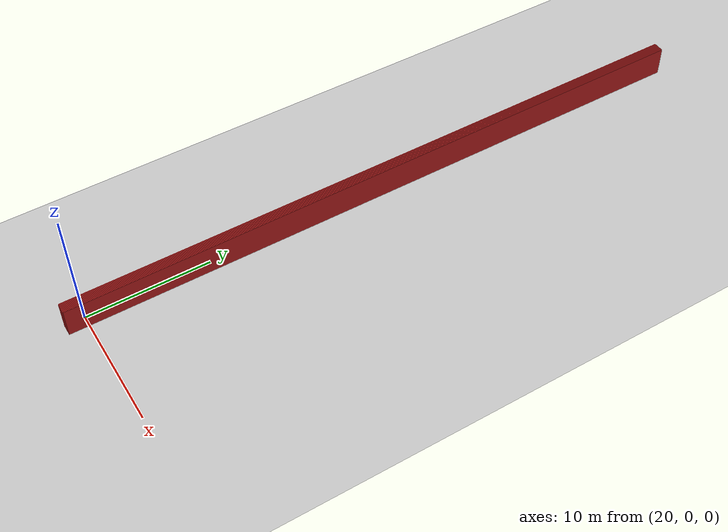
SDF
<sdf version="1.4">
 <world name="1_wall">
  <model name="ground_plane">
   <static>1</static>
   <link name="link">
    <collision name="collision">
     <geometry><plane><normal>0 0 1</normal><size>1000 1000</size></plane></geometry>
     <surface><friction><ode><mu>100</mu><mu2>50</mu2></ode></friction></surface>
    </collision>
    <visual name="visual">
     <cast_shadows>0</cast_shadows>
     <geometry><plane><normal>0 0 1</normal><size>10000 10000</size></plane></geometry>
     <material>
      <script><uri>file://media/materials/scripts/gazebo.material</uri><name>Gazebo/Grey</name></script>
     </material>
    </visual>
    <velocity_decay><linear>0</linear><angular>0</angular></velocity_decay>
   </link>
  </model>
  <model name="Wall_430">
   <static>1</static>
   <link name="Wall_430">
    <collision name="Wall_Collision_430">
     <geometry><box><size>53.65 0.05 2.5</size></box></geometry>
     <pose>0 0 1.25 0 -0 0</pose>
    </collision>
    <visual name="Wall_Visual_430">
     <pose>0 0 1.25 0 -0 0</pose>
     <geometry><box><size>53.65 0.05 2.5</size></box></geometry>
     <material>
      <script><uri>file://media/materials/scripts/gazebo.material</uri><name>Gazebo/Red</name></script>
     </material>
    </visual>
    <velocity_decay><linear>0</linear><angular>0</angular></velocity_decay>
    <pose>20.0 25.3 0 0 0 1.5707963267948966</pose>
   </link>
  </model>
  <model name="Wall_431">
   <static>1</static>
   <link name="Wall_431">
    <collision name="Wall_Collision_431">
     <geometry><box><size>53.65 0.05 2.5</size></box></geometry>
     <pose>0 0 1.25 0 -0 0</pose>
    </collision>
    <visual name="Wall_Visual_431">
     <pose>0 0 1.25 0 -0 0</pose>
     <geometry><box><size>53.65 0.05 2.5</size></box></geometry>
     <material>
      <script><uri>file://media/materials/scripts/gazebo.material</uri><name>Gazebo/Red</name></script>
     </material>
    </visual>
    <velocity_decay><linear>0</linear><angular>0</angular></velocity_decay>
    <pose>20.05 25.3 0 0 0 1.5707963267948966</pose>
   </link>
  </model>
  <model name="Wall_432">
   <static>1</static>
   <link name="Wall_432">
    <collision name="Wall_Collision_432">
     <geometry><box><size>53.65 0.05 2.5</size></box></geometry>
     <pose>0 0 1.25 0 -0 0</pose>
    </collision>
    <visual name="Wall_Visual_432">
     <pose>0 0 1.25 0 -0 0</pose>
     <geometry><box><size>53.65 0.05 2.5</size></box></geometry>
     <material>
      <script><uri>file://media/materials/scripts/gazebo.material</uri><name>Gazebo/Red</name></script>
     </material>
    </visual>
    <velocity_decay><linear>0</linear><angular>0</angular></velocity_decay>
    <pose>20.1 25.3 0 0 0 1.5707963267948966</pose>
   </link>
  </model>
  <model name="Wall_433">
   <static>1</static>
   <link name="Wall_433">
    <collision name="Wall_Collision_433">
     <geometry><box><size>53.65 0.05 2.5</size></box></geometry>
     <pose>0 0 1.25 0 -0 0</pose>
    </collision>
    <visual name="Wall_Visual_433">
     <pose>0 0 1.25 0 -0 0</pose>
     <geometry><box><size>53.65 0.05 2.5</size></box></geometry>
     <material>
      <script><uri>file://media/materials/scripts/gazebo.material</uri><name>Gazebo/Red</name></script>
     </material>
    </visual>
    <velocity_decay><linear>0</linear><angular>0</angular></velocity_decay>
    <pose>20.15 25.3 0 0 0 1.5707963267948966</pose>
   </link>
  </model>
  <model name="Wall_434">
   <static>1</static>
   <link name="Wall_434">
    <collision name="Wall_Collision_434">
     <geometry><box><size>53.65 0.05 2.5</size></box></geometry>
     <pose>0 0 1.25 0 -0 0</pose>
    </collision>
    <visual name="Wall_Visual_434">
     <pose>0 0 1.25 0 -0 0</pose>
     <geometry><box><size>53.65 0.05 2.5</size></box></geometry>
     <material>
      <script><uri>file://media/materials/scripts/gazebo.material</uri><name>Gazebo/Red</name></script>
     </material>
    </visual>
    <velocity_decay><linear>0</linear><angular>0</angular></velocity_decay>
    <pose>20.2 25.3 0 0 0 1.5707963267948966</pose>
   </link>
  </model>
  <model name="Wall_435">
   <static>1</static>
   <link name="Wall_435">
    <collision name="Wall_Collision_435">
     <geometry><box><size>53.65 0.05 2.5</size></box></geometry>
     <pose>0 0 1.25 0 -0 0</pose>
    </collision>
    <visual name="Wall_Visual_435">
     <pose>0 0 1.25 0 -0 0</pose>
     <geometry><box><size>53.65 0.05 2.5</size></box></geometry>
     <material>
      <script><uri>file://media/materials/scripts/gazebo.material</uri><name>Gazebo/Red</name></script>
     </material>
    </visual>
    <velocity_decay><linear>0</linear><angular>0</angular></velocity_decay>
    <pose>20.25 25.3 0 0 0 1.5707963267948966</pose>
   </link>
  </model>
  <model name="Wall_436">
   <static>1</static>
   <link name="Wall_436">
    <collision name="Wall_Collision_436">
     <geometry><box><size>53.65 0.05 2.5</size></box></geometry>
     <pose>0 0 1.25 0 -0 0</pose>
    </collision>
    <visual name="Wall_Visual_436">
     <pose>0 0 1.25 0 -0 0</pose>
     <geometry><box><size>53.65 0.05 2.5</size></box></geometry>
     <material>
      <script><uri>file://media/materials/scripts/gazebo.material</uri><name>Gazebo/Red</name></script>
     </material>
    </visual>
    <velocity_decay><linear>0</linear><angular>0</angular></velocity_decay>
    <pose>20.3 25.3 0 0 0 1.5707963267948966</pose>
   </link>
  </model>
  <model name="Wall_437">
   <static>1</static>
   <link name="Wall_437">
    <collision name="Wall_Collision_437">
     <geometry><box><size>53.65 0.05 2.5</size></box></geometry>
     <pose>0 0 1.25 0 -0 0</pose>
    </collision>
    <visual name="Wall_Visual_437">
     <pose>0 0 1.25 0 -0 0</pose>
     <geometry><box><size>53.65 0.05 2.5</size></box></geometry>
     <material>
      <script><uri>file://media/materials/scripts/gazebo.material</uri><name>Gazebo/Red</name></script>
     </material>
    </visual>
    <velocity_decay><linear>0</linear><angular>0</angular></velocity_decay>
    <pose>20.35 25.3 0 0 0 1.5707963267948966</pose>
   </link>
  </model>
  <model name="Wall_438">
   <static>1</static>
   <link name="Wall_438">
    <collision name="Wall_Collision_438">
     <geometry><box><size>53.65 0.05 2.5</size></box></geometry>
     <pose>0 0 1.25 0 -0 0</pose>
    </collision>
    <visual name="Wall_Visual_438">
     <pose>0 0 1.25 0 -0 0</pose>
     <geometry><box><size>53.65 0.05 2.5</size></box></geometry>
     <material>
      <script><uri>file://media/materials/scripts/gazebo.material</uri><name>Gazebo/Red</name></script>
     </material>
    </visual>
    <velocity_decay><linear>0</linear><angular>0</angular></velocity_decay>
    <pose>20.4 25.3 0 0 0 1.5707963267948966</pose>
   </link>
  </model>
  <model name="Wall_439">
   <static>1</static>
   <link name="Wall_439">
    <collision name="Wall_Collision_439">
     <geometry><box><size>53.65 0.05 2.5</size></box></geometry>
     <pose>0 0 1.25 0 -0 0</pose>
    </collision>
    <visual name="Wall_Visual_439">
     <pose>0 0 1.25 0 -0 0</pose>
     <geometry><box><size>53.65 0.05 2.5</size></box></geometry>
     <material>
      <script><uri>file://media/materials/scripts/gazebo.material</uri><name>Gazebo/Red</name></script>
     </material>
    </visual>
    <velocity_decay><linear>0</linear><angular>0</angular></velocity_decay>
    <pose>20.45 25.3 0 0 0 1.5707963267948966</pose>
   </link>
  </model>
  <model name="Wall_440">
   <static>1</static>
   <link name="Wall_440">
    <collision name="Wall_Collision_440">
     <geometry><box><size>53.65 0.05 2.5</size></box></geometry>
     <pose>0 0 1.25 0 -0 0</pose>
    </collision>
    <visual name="Wall_Visual_440">
     <pose>0 0 1.25 0 -0 0</pose>
     <geometry><box><size>53.65 0.05 2.5</size></box></geometry>
     <material>
      <script><uri>file://media/materials/scripts/gazebo.material</uri><name>Gazebo/Red</name></script>
     </material>
    </visual>
    <velocity_decay><linear>0</linear><angular>0</angular></velocity_decay>
    <pose>20.5 25.3 0 0 0 1.5707963267948966</pose>
   </link>
  </model>
  <model name="Wall_441">
   <static>1</static>
   <link name="Wall_441">
    <collision name="Wall_Collision_441">
     <geometry><box><size>53.65 0.05 2.5</size></box></geometry>
     <pose>0 0 1.25 0 -0 0</pose>
    </collision>
    <visual name="Wall_Visual_441">
     <pose>0 0 1.25 0 -0 0</pose>
     <geometry><box><size>53.65 0.05 2.5</size></box></geometry>
     <material>
      <script><uri>file://media/materials/scripts/gazebo.material</uri><name>Gazebo/Red</name></script>
     </material>
    </visual>
    <velocity_decay><linear>0</linear><angular>0</angular></velocity_decay>
    <pose>20.55 25.3 0 0 0 1.5707963267948966</pose>
   </link>
  </model>
  <model name="Wall_442">
   <static>1</static>
   <link name="Wall_442">
    <collision name="Wall_Collision_442">
     <geometry><box><size>53.65 0.05 2.5</size></box></geometry>
     <pose>0 0 1.25 0 -0 0</pose>
    </collision>
    <visual name="Wall_Visual_442">
     <pose>0 0 1.25 0 -0 0</pose>
     <geometry><box><size>53.65 0.05 2.5</size></box></geometry>
     <material>
      <script><uri>file://media/materials/scripts/gazebo.material</uri><name>Gazebo/Red</name></script>
     </material>
    </visual>
    <velocity_decay><linear>0</linear><angular>0</angular></velocity_decay>
    <pose>20.6 25.3 0 0 0 1.5707963267948966</pose>
   </link>
  </model>
  <model name="Wall_443">
   <static>1</static>
   <link name="Wall_443">
    <collision name="Wall_Collision_443">
     <geometry><box><size>53.65 0.05 2.5</size></box></geometry>
     <pose>0 0 1.25 0 -0 0</pose>
    </collision>
    <visual name="Wall_Visual_443">
     <pose>0 0 1.25 0 -0 0</pose>
     <geometry><box><size>53.65 0.05 2.5</size></box></geometry>
     <material>
      <script><uri>file://media/materials/scripts/gazebo.material</uri><name>Gazebo/Red</name></script>
     </material>
    </visual>
    <velocity_decay><linear>0</linear><angular>0</angular></velocity_decay>
    <pose>20.65 25.3 0 0 0 1.5707963267948966</pose>
   </link>
  </model>
  <model name="Wall_444">
   <static>1</static>
   <link name="Wall_444">
    <collision name="Wall_Collision_444">
     <geometry><box><size>53.65 0.05 2.5</size></box></geometry>
     <pose>0 0 1.25 0 -0 0</pose>
    </collision>
    <visual name="Wall_Visual_444">
     <pose>0 0 1.25 0 -0 0</pose>
     <geometry><box><size>53.65 0.05 2.5</size></box></geometry>
     <material>
      <script><uri>file://media/materials/scripts/gazebo.material</uri><name>Gazebo/Red</name></script>
     </material>
    </visual>
    <velocity_decay><linear>0</linear><angular>0</angular></velocity_decay>
    <pose>20.7 25.3 0 0 0 1.5707963267948966</pose>
   </link>
  </model>
  <model name="Wall_445">
   <static>1</static>
   <link name="Wall_445">
    <collision name="Wall_Collision_445">
     <geometry><box><size>53.65 0.05 2.5</size></box></geometry>
     <pose>0 0 1.25 0 -0 0</pose>
    </collision>
    <visual name="Wall_Visual_445">
     <pose>0 0 1.25 0 -0 0</pose>
     <geometry><box><size>53.65 0.05 2.5</size></box></geometry>
     <material>
      <script><uri>file://media/materials/scripts/gazebo.material</uri><name>Gazebo/Red</name></script>
     </material>
    </visual>
    <velocity_decay><linear>0</linear><angular>0</angular></velocity_decay>
    <pose>20.75 25.3 0 0 0 1.5707963267948966</pose>
   </link>
  </model>
  <model name="Wall_446">
   <static>1</static>
   <link name="Wall_446">
    <collision name="Wall_Collision_446">
     <geometry><box><size>53.65 0.05 2.5</size></box></geometry>
     <pose>0 0 1.25 0 -0 0</pose>
    </collision>
    <visual name="Wall_Visual_446">
     <pose>0 0 1.25 0 -0 0</pose>
     <geometry><box><size>53.65 0.05 2.5</size></box></geometry>
     <material>
      <script><uri>file://media/materials/scripts/gazebo.material</uri><name>Gazebo/Red</name></script>
     </material>
    </visual>
    <velocity_decay><linear>0</linear><angular>0</angular></velocity_decay>
    <pose>20.8 25.3 0 0 0 1.5707963267948966</pose>
   </link>
  </model>
  <model name="Wall_447">
   <static>1</static>
   <link name="Wall_447">
    <collision name="Wall_Collision_447">
     <geometry><box><size>53.65 0.05 2.5</size></box></geometry>
     <pose>0 0 1.25 0 -0 0</pose>
    </collision>
    <visual name="Wall_Visual_447">
     <pose>0 0 1.25 0 -0 0</pose>
     <geometry><box><size>53.65 0.05 2.5</size></box></geometry>
     <material>
      <script><uri>file://media/materials/scripts/gazebo.material</uri><name>Gazebo/Red</name></script>
     </material>
    </visual>
    <velocity_decay><linear>0</linear><angular>0</angular></velocity_decay>
    <pose>20.85 25.3 0 0 0 1.5707963267948966</pose>
   </link>
  </model>
 </world>
</sdf>
